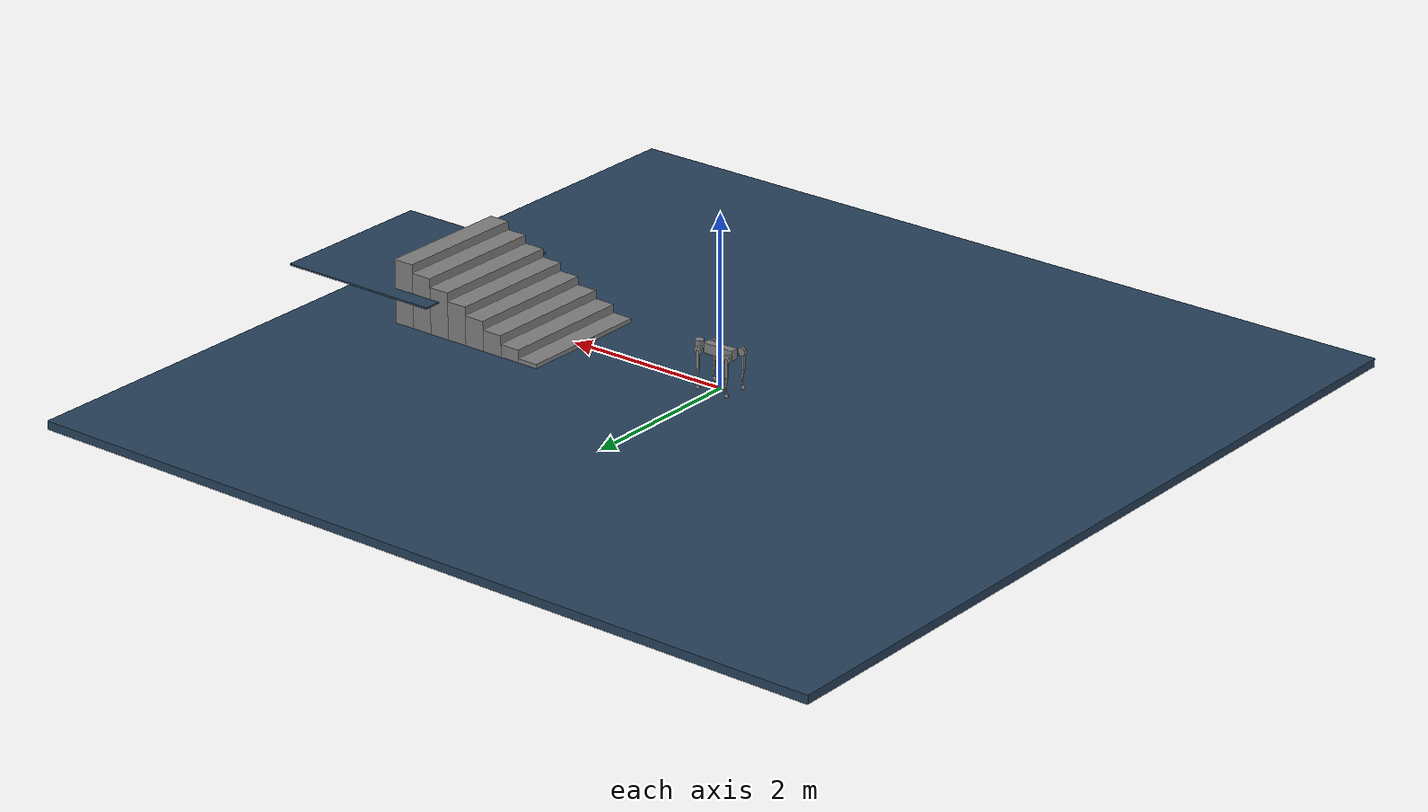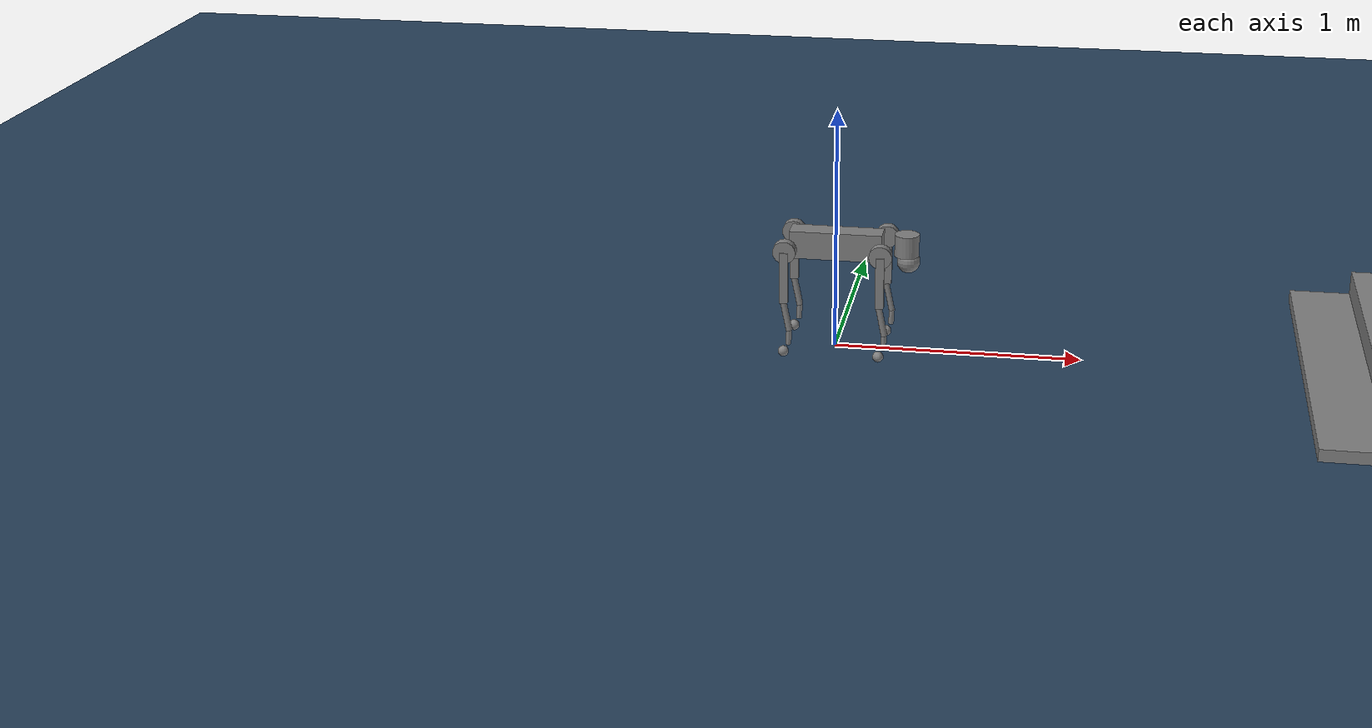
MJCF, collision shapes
<mujoco model="go2 stairs">
  <include file="go2.xml"/>

  <statistic center="0 0 0.3" extent="3"/>

  <visual>
    <headlight diffuse="0.6 0.6 0.6" ambient="0.3 0.3 0.3" specular="0 0 0"/>
    <rgba haze="0.15 0.25 0.35 1"/>
    <global azimuth="-130" elevation="-20"/>
  </visual>

  <asset>
    <texture type="skybox" builtin="gradient" rgb1="0.3 0.5 0.7" rgb2="0 0 0" width="512" height="3072"/>
    <texture type="2d" name="groundplane" builtin="checker" mark="edge" rgb1="0.2 0.3 0.4" rgb2="0.1 0.2 0.3"
      markrgb="0.8 0.8 0.8" width="300" height="300"/>
    <material name="groundplane" texture="groundplane" texuniform="true" texrepeat="5 5" reflectance="0.2"/>
    <material name="stair" rgba="0.5 0.5 0.5 1"/>
  </asset>

  <worldbody>
    <light pos="0 0 1.5" dir="0 0 -1" directional="true"/>

    <!-- Base floor -->
    <geom name="floor" pos="0 0 -0.05" size="5 5 0.05" type="box" material="groundplane"/>

    <!-- Stairs: 5cm rise, 25cm depth, 8 steps = 40cm total height -->
    <!-- Step 1 -->
    <geom name="step1" pos="2.0 0 0.025" size="0.125 0.8 0.025" type="box" material="stair" condim="3" friction="0.6 0.02 0.01"/>

    <!-- Step 2 -->
    <geom name="step2" pos="2.25 0 0.075" size="0.125 0.8 0.075" type="box" material="stair" condim="3" friction="0.6 0.02 0.01"/>

    <!-- Step 3 -->
    <geom name="step3" pos="2.5 0 0.125" size="0.125 0.8 0.125" type="box" material="stair" condim="3" friction="0.6 0.02 0.01"/>

    <!-- Step 4 -->
    <geom name="step4" pos="2.75 0 0.175" size="0.125 0.8 0.175" type="box" material="stair" condim="3" friction="0.6 0.02 0.01"/>

    <!-- Step 5 -->
    <geom name="step5" pos="3.0 0 0.225" size="0.125 0.8 0.225" type="box" material="stair" condim="3" friction="0.6 0.02 0.01"/>

    <!-- Step 6 -->
    <geom name="step6" pos="3.25 0 0.275" size="0.125 0.8 0.275" type="box" material="stair" condim="3" friction="0.6 0.02 0.01"/>

    <!-- Step 7 -->
    <geom name="step7" pos="3.5 0 0.325" size="0.125 0.8 0.325" type="box" material="stair" condim="3" friction="0.6 0.02 0.01"/>

    <!-- Step 8 (top landing) -->
    <geom name="step8" pos="3.75 0 0.375" size="0.125 0.8 0.375" type="box" material="stair" condim="3" friction="0.6 0.02 0.01"/>

    <!-- Top platform -->
    <geom name="platform" pos="4.25 0 0.4" size="1.0 1.0 0.01" type="box" material="groundplane" condim="3" friction="0.6 0.02 0.01"/>

  </worldbody>
</mujoco>

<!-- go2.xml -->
<mujoco model="go2">
  <compiler angle="radian" meshdir="assets" autolimits="true"/>

  <option cone="elliptic" impratio="100"/>

  <default>
    <default class="go2">
      <geom friction="0.6" margin="0.001" condim="1"/>
      <joint axis="0 1 0" damping="2" armature="0.01" frictionloss="0.2"/>
      <motor ctrlrange="-23.7 23.7"/>
      <default class="abduction">
        <joint axis="1 0 0" range="-1.0472 1.0472"/>
      </default>
      <default class="hip">
        <default class="front_hip">
          <joint range="-1.5708 3.4907"/>
        </default>
        <default class="back_hip">
          <joint range="-0.5236 4.5379"/>
        </default>
      </default>
      <default class="knee">
        <joint range="-2.7227 -0.83776"/>
        <motor ctrlrange="-45.43 45.43"/>
      </default>
      <default class="visual">
        <geom type="mesh" contype="0" conaffinity="0" group="2"/>
      </default>
      <default class="collision">
        <geom group="3"/>
        <default class="foot">
          <geom size="0.022" pos="-0.002 0 -0.213" priority="1" solimp="0.015 1 0.022" condim="6"
            friction="0.8 0.02 0.01"/>
        </default>
      </default>
    </default>
  </default>

  <asset>
    <material name="metal" rgba=".9 .95 .95 1"/>
    <material name="black" rgba="0 0 0 1"/>
    <material name="white" rgba="1 1 1 1"/>
    <material name="gray" rgba="0.671705 0.692426 0.774270 1"/>

    <mesh file="base_0.obj"/>
    <mesh file="base_1.obj"/>
    <mesh file="base_2.obj"/>
    <mesh file="base_3.obj"/>
    <mesh file="base_4.obj"/>
    <mesh file="hip_0.obj"/>
    <mesh file="hip_1.obj"/>
    <mesh file="thigh_0.obj"/>
    <mesh file="thigh_1.obj"/>
    <mesh file="thigh_mirror_0.obj"/>
    <mesh file="thigh_mirror_1.obj"/>
    <mesh file="calf_0.obj"/>
    <mesh file="calf_1.obj"/>
    <mesh file="calf_mirror_0.obj"/>
    <mesh file="calf_mirror_1.obj"/>
    <mesh file="foot.obj"/>
  </asset>

  <worldbody>
    <body name="base" pos="0 0 0.445" childclass="go2">
      <inertial pos="0.021112 0 -0.005366" quat="-0.000543471 0.713435 -0.00173769 0.700719" mass="6.921"
        diaginertia="0.107027 0.0980771 0.0244531"/>
      <freejoint/>
      <geom mesh="base_0" material="black" class="visual"/>
      <geom mesh="base_1" material="black" class="visual"/>
      <geom mesh="base_2" material="black" class="visual"/>
      <geom mesh="base_3" material="white" class="visual"/>
      <geom mesh="base_4" material="gray" class="visual"/>
      <geom size="0.1881 0.04675 0.057" type="box" class="collision"/>
      <geom size="0.05 0.045" pos="0.285 0 0.01" type="cylinder" class="collision"/>
      <geom size="0.047" pos="0.293 0 -0.06" class="collision"/>
      <site name="imu" pos="-0.02557 0 0.04232"/>
      <body name="FL_hip" pos="0.1934 0.0465 0">
        <inertial pos="-0.0054 0.00194 -0.000105" quat="0.497014 0.499245 0.505462 0.498237" mass="0.678"
          diaginertia="0.00088403 0.000596003 0.000479967"/>
        <joint name="FL_hip_joint" class="abduction"/>
        <geom mesh="hip_0" material="metal" class="visual"/>
        <geom mesh="hip_1" material="gray" class="visual"/>
        <geom size="0.046 0.02" pos="0 0.08 0" quat="1 1 0 0" type="cylinder" class="collision"/>
        <body name="FL_thigh" pos="0 0.0955 0">
          <inertial pos="-0.00374 -0.0223 -0.0327" quat="0.829533 0.0847635 -0.0200632 0.551623" mass="1.152"
            diaginertia="0.00594973 0.00584149 0.000878787"/>
          <joint name="FL_thigh_joint" class="front_hip"/>
          <geom mesh="thigh_0" material="metal" class="visual"/>
          <geom mesh="thigh_1" material="gray" class="visual"/>
          <geom size="0.1065 0.01225 0.017" pos="0 0 -0.1065" quat="0.707107 0 0.707107 0" type="box" class="collision"/>
          <body name="FL_calf" pos="0 0 -0.213">
            <inertial pos="0.00629595 -0.000622121 -0.141417" quat="0.710672 0.00154099 -0.00450087 0.703508"
              mass="0.241352" diaginertia="0.0014901 0.00146356 5.31397e-05"/>
            <joint name="FL_calf_joint" class="knee"/>
            <geom mesh="calf_0" material="gray" class="visual"/>
            <geom mesh="calf_1" material="black" class="visual"/>
            <geom size="0.012 0.06" pos="0.008 0 -0.06" quat="0.994493 0 -0.104807 0" type="cylinder" class="collision"/>
            <geom size="0.011 0.0325" pos="0.02 0 -0.148" quat="0.999688 0 0.0249974 0" type="cylinder" class="collision"/>
            <geom pos="0 0 -0.213" mesh="foot" class="visual" material="black"/>
            <geom name="FL" class="foot"/>
            <site name="FL_toe" pos="0 0 -0.213" size="0.02" rgba="1 0 0 1"/>
          </body>
        </body>
      </body>
      <body name="FR_hip" pos="0.1934 -0.0465 0">
        <inertial pos="-0.0054 -0.00194 -0.000105" quat="0.498237 0.505462 0.499245 0.497014" mass="0.678"
          diaginertia="0.00088403 0.000596003 0.000479967"/>
        <joint name="FR_hip_joint" class="abduction"/>
        <geom mesh="hip_0" material="metal" class="visual" quat="4.63268e-05 1 0 0"/>
        <geom mesh="hip_1" material="gray" class="visual" quat="4.63268e-05 1 0 0"/>
        <geom size="0.046 0.02" pos="0 -0.08 0" quat="0.707107 0.707107 0 0" type="cylinder" class="collision"/>
        <body name="FR_thigh" pos="0 -0.0955 0">
          <inertial pos="-0.00374 0.0223 -0.0327" quat="0.551623 -0.0200632 0.0847635 0.829533" mass="1.152"
            diaginertia="0.00594973 0.00584149 0.000878787"/>
          <joint name="FR_thigh_joint" class="front_hip"/>
          <geom mesh="thigh_mirror_0" material="metal" class="visual"/>
          <geom mesh="thigh_mirror_1" material="gray" class="visual"/>
          <geom size="0.1065 0.01225 0.017" pos="0 0 -0.1065" quat="0.707107 0 0.707107 0" type="box" class="collision"/>
          <body name="FR_calf" pos="0 0 -0.213">
            <inertial pos="0.00629595 0.000622121 -0.141417" quat="0.703508 -0.00450087 0.00154099 0.710672"
              mass="0.241352" diaginertia="0.0014901 0.00146356 5.31397e-05"/>
            <joint name="FR_calf_joint" class="knee"/>
            <geom mesh="calf_mirror_0" material="gray" class="visual"/>
            <geom mesh="calf_mirror_1" material="black" class="visual"/>
            <geom size="0.013 0.06" pos="0.01 0 -0.06" quat="0.995004 0 -0.0998334 0" type="cylinder" class="collision"/>
            <geom size="0.011 0.0325" pos="0.02 0 -0.148" quat="0.999688 0 0.0249974 0" type="cylinder" class="collision"/>
            <geom pos="0 0 -0.213" mesh="foot" class="visual" material="black"/>
            <geom name="FR" class="foot"/>
            <site name="FR_toe" pos="0 0 -0.213" size="0.02" rgba="1 0 0 1"/>
          </body>
        </body>
      </body>
      <body name="RL_hip" pos="-0.1934 0.0465 0">
        <inertial pos="0.0054 0.00194 -0.000105" quat="0.505462 0.498237 0.497014 0.499245" mass="0.678"
          diaginertia="0.00088403 0.000596003 0.000479967"/>
        <joint name="RL_hip_joint" class="abduction"/>
        <geom mesh="hip_0" material="metal" class="visual" quat="4.63268e-05 0 1 0"/>
        <geom mesh="hip_1" material="gray" class="visual" quat="4.63268e-05 0 1 0"/>
        <geom size="0.046 0.02" pos="0 0.08 0" quat="0.707107 0.707107 0 0" type="cylinder" class="collision"/>
        <body name="RL_thigh" pos="0 0.0955 0">
          <inertial pos="-0.00374 -0.0223 -0.0327" quat="0.829533 0.0847635 -0.0200632 0.551623" mass="1.152"
            diaginertia="0.00594973 0.00584149 0.000878787"/>
          <joint name="RL_thigh_joint" class="back_hip"/>
          <geom mesh="thigh_0" material="metal" class="visual"/>
          <geom mesh="thigh_1" material="gray" class="visual"/>
          <geom size="0.1065 0.01225 0.017" pos="0 0 -0.1065" quat="0.707107 0 0.707107 0" type="box" class="collision"/>
          <body name="RL_calf" pos="0 0 -0.213">
            <inertial pos="0.00629595 -0.000622121 -0.141417" quat="0.710672 0.00154099 -0.00450087 0.703508"
              mass="0.241352" diaginertia="0.0014901 0.00146356 5.31397e-05"/>
            <joint name="RL_calf_joint" class="knee"/>
            <geom mesh="calf_0" material="gray" class="visual"/>
            <geom mesh="calf_1" material="black" class="visual"/>
            <geom size="0.013 0.06" pos="0.01 0 -0.06" quat="0.995004 0 -0.0998334 0" type="cylinder" class="collision"/>
            <geom size="0.011 0.0325" pos="0.02 0 -0.148" quat="0.999688 0 0.0249974 0" type="cylinder" class="collision"/>
            <geom pos="0 0 -0.213" mesh="foot" class="visual" material="black"/>
            <geom name="RL" class="foot"/>
            <site name="RL_toe" pos="0 0 -0.213" size="0.02" rgba="1 0 0 1"/>
          </body>
        </body>
      </body>
      <body name="RR_hip" pos="-0.1934 -0.0465 0">
        <inertial pos="0.0054 -0.00194 -0.000105" quat="0.499245 0.497014 0.498237 0.505462" mass="0.678"
          diaginertia="0.00088403 0.000596003 0.000479967"/>
        <joint name="RR_hip_joint" class="abduction"/>
        <geom mesh="hip_0" material="metal" class="visual" quat="2.14617e-09 4.63268e-05 4.63268e-05 -1"/>
        <geom mesh="hip_1" material="gray" class="visual" quat="2.14617e-09 4.63268e-05 4.63268e-05 -1"/>
        <geom size="0.046 0.02" pos="0 -0.08 0" quat="0.707107 0.707107 0 0" type="cylinder" class="collision"/>
        <body name="RR_thigh" pos="0 -0.0955 0">
          <inertial pos="-0.00374 0.0223 -0.0327" quat="0.551623 -0.0200632 0.0847635 0.829533" mass="1.152"
            diaginertia="0.00594973 0.00584149 0.000878787"/>
          <joint name="RR_thigh_joint" class="back_hip"/>
          <geom mesh="thigh_mirror_0" material="metal" class="visual"/>
          <geom mesh="thigh_mirror_1" material="gray" class="visual"/>
          <geom size="0.1065 0.01225 0.017" pos="0 0 -0.1065" quat="0.707107 0 0.707107 0" type="box" class="collision"/>
          <body name="RR_calf" pos="0 0 -0.213">
            <inertial pos="0.00629595 0.000622121 -0.141417" quat="0.703508 -0.00450087 0.00154099 0.710672"
              mass="0.241352" diaginertia="0.0014901 0.00146356 5.31397e-05"/>
            <joint name="RR_calf_joint" class="knee"/>
            <geom mesh="calf_mirror_0" material="gray" class="visual"/>
            <geom mesh="calf_mirror_1" material="black" class="visual"/>
            <geom size="0.013 0.06" pos="0.01 0 -0.06" quat="0.995004 0 -0.0998334 0" type="cylinder" class="collision"/>
            <geom size="0.011 0.0325" pos="0.02 0 -0.148" quat="0.999688 0 0.0249974 0" type="cylinder" class="collision"/>
            <geom pos="0 0 -0.213" mesh="foot" class="visual" material="black"/>
            <geom name="RR" class="foot"/>
            <site name="RR_toe" pos="0 0 -0.213" size="0.02" rgba="1 0 0 1"/>
          </body>
        </body>
      </body>
    </body>
  </worldbody>

  <actuator>
    <motor class="abduction" name="FL_hip" joint="FL_hip_joint"/>
    <motor class="hip" name="FL_thigh" joint="FL_thigh_joint"/>
    <motor class="knee" name="FL_calf" joint="FL_calf_joint"/>
    <motor class="abduction" name="FR_hip" joint="FR_hip_joint"/>
    <motor class="hip" name="FR_thigh" joint="FR_thigh_joint"/>
    <motor class="knee" name="FR_calf" joint="FR_calf_joint"/>
    <motor class="abduction" name="RL_hip" joint="RL_hip_joint"/>
    <motor class="hip" name="RL_thigh" joint="RL_thigh_joint"/>
    <motor class="knee" name="RL_calf" joint="RL_calf_joint"/>
    <motor class="abduction" name="RR_hip" joint="RR_hip_joint"/>
    <motor class="hip" name="RR_thigh" joint="RR_thigh_joint"/>
    <motor class="knee" name="RR_calf" joint="RR_calf_joint"/>
  </actuator>

  <keyframe>
    <key name="home" qpos="0 0 0.27 1 0 0 0 0 0.9 -1.8 0 0.9 -1.8 0 0.9 -1.8 0 0.9 -1.8"
      ctrl="0 0.9 -1.8 0 0.9 -1.8 0 0.9 -1.8 0 0.9 -1.8"/>
  </keyframe>
</mujoco>
